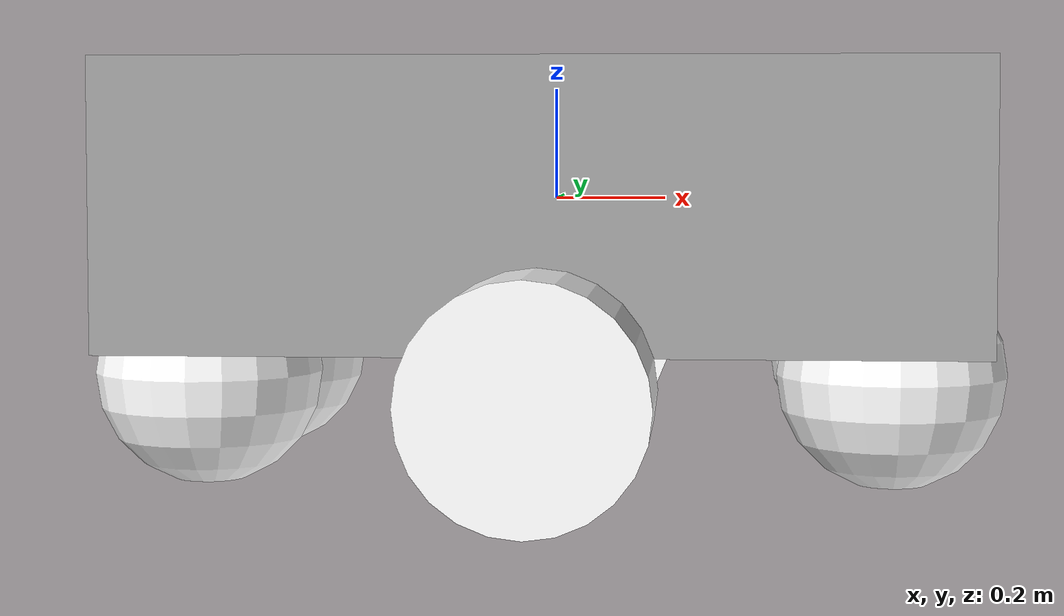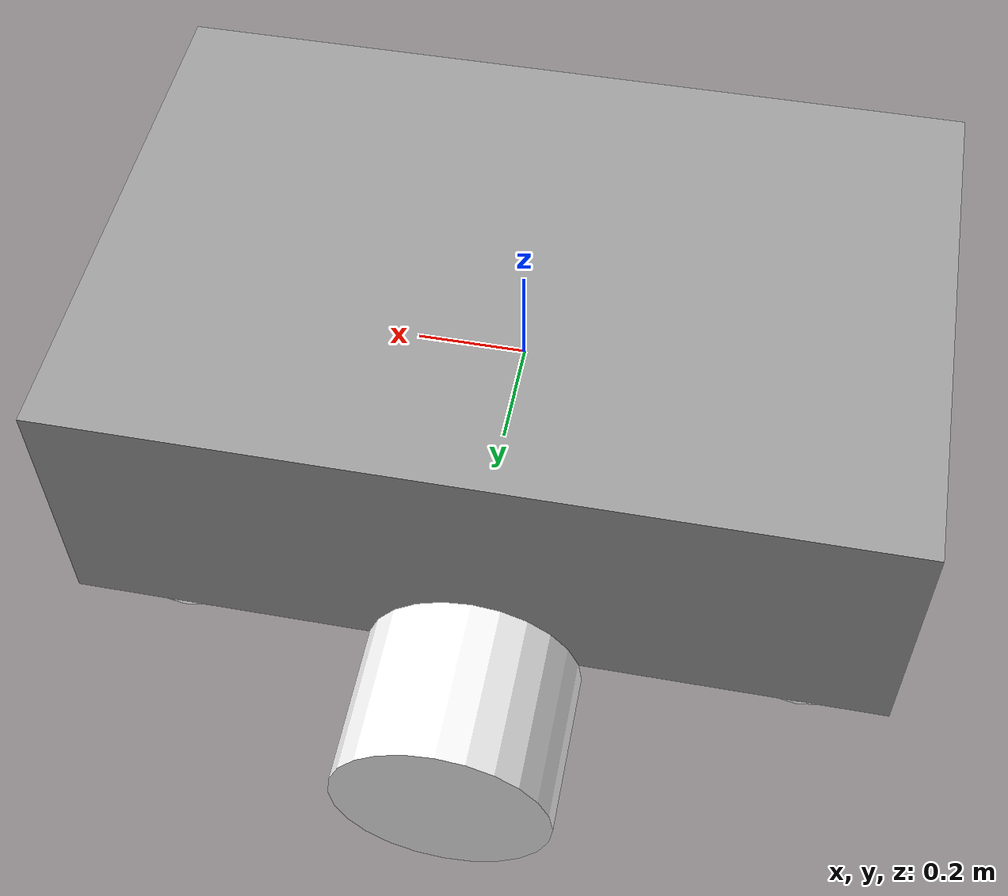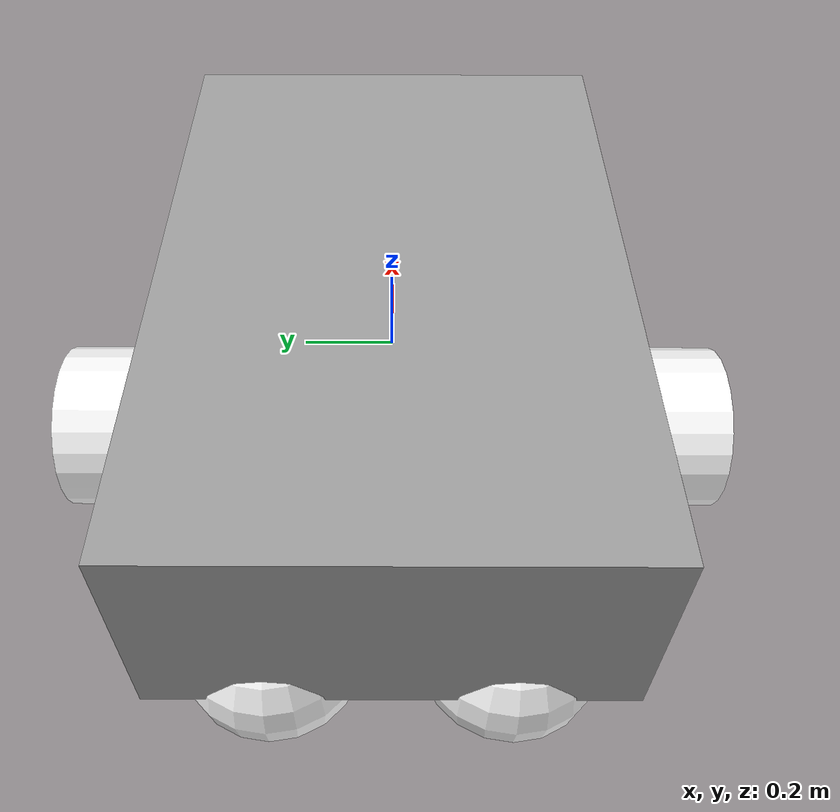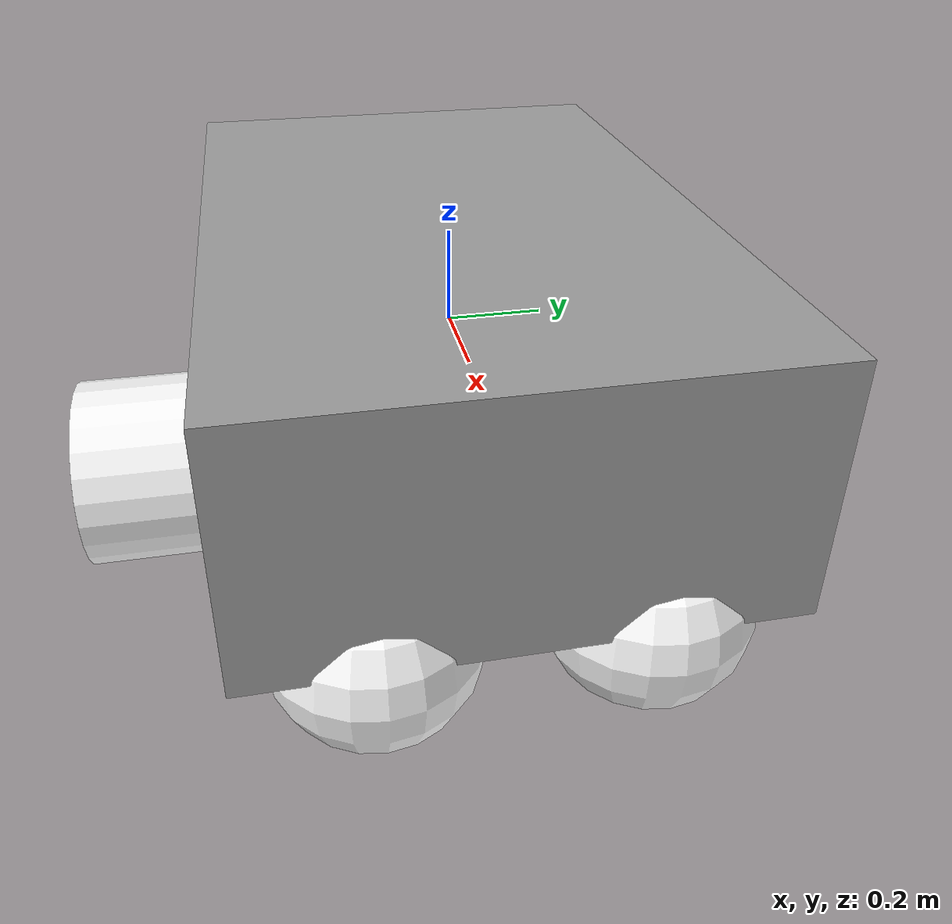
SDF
<sdf version='1.9'>
  <model name='dummy_bot'>
    <link name='chassis'>
      <inertial>
        <pose>0 0 0 0 0 0</pose>
        <mass>1</mass>
        <inertia>
          <ixx>0.1875</ixx>
          <ixy>0</ixy>
          <ixz>0</ixz>
          <iyy>0.089999999999999997</iyy>
          <iyz>0</iyz>
          <izz>0.27000000000000002</izz>
        </inertia>
      </inertial>
      <collision name='chassis_collision'>
        <pose>0 0 0 0 0 0</pose>
        <geometry>
          <box>
            <size>1.5 1 0.5</size>
          </box>
        </geometry>
      </collision>
      <visual name='chassis_visual'>
        <pose>0 0 0 0 0 0</pose>
        <geometry>
          <box>
            <size>1.5 1 0.5</size>
          </box>
        </geometry>
        <material>
          <diffuse>0.625 0.625 0.625 1</diffuse>
          <ambient>0.625 0.625 0.625 1</ambient>
        </material>
      </visual>
    </link>
    <joint name='chassis_to_back_left_dummy_wheel' type='revolute'>
      <pose relative_to='chassis'>0 0 0 0 0 0</pose>
      <parent>chassis</parent>
      <child>back_left_dummy_wheel</child>
      <axis>
        <xyz>1 0 0</xyz>
        <limit>
          <lower>-10000000000000000</lower>
          <upper>10000000000000000</upper>
        </limit>
        <dynamics>
          <spring_reference>0</spring_reference>
          <spring_stiffness>0</spring_stiffness>
        </dynamics>
      </axis>
    </joint>
    <link name='back_left_dummy_wheel'>
      <pose relative_to='chassis_to_back_left_dummy_wheel'>0 0 0 0 0 0</pose>
      <inertial>
        <pose>0 0 0 0 0 0</pose>
        <mass>1</mass>
        <inertia>
          <ixx>0.016</ixx>
          <ixy>0</ixy>
          <ixz>0</ixz>
          <iyy>0.016</iyy>
          <iyz>0</iyz>
          <izz>0.016</izz>
        </inertia>
      </inertial>
      <collision name='back_left_dummy_wheel_collision'>
        <pose>0 0 0 0 0 0</pose>
        <geometry>
          <sphere>
            <radius>0.20000000000000001</radius>
          </sphere>
        </geometry>
      </collision>
      <visual name='back_left_dummy_wheel_visual'>
        <pose>-0.6 0.25 -0.3 0 0 0</pose>
        <geometry>
          <sphere>
            <radius>0.20000000000000001</radius>
          </sphere>
        </geometry>
        <material>
          <diffuse>1 1 1 1</diffuse>
          <ambient>1 1 1 1</ambient>
        </material>
      </visual>
    </link>
    <joint name='chassis_to_back_right_dummy_wheel' type='revolute'>
      <pose relative_to='chassis'>0 0 0 0 0 0</pose>
      <parent>chassis</parent>
      <child>back_right_dummy_wheel</child>
      <axis>
        <xyz>1 0 0</xyz>
        <limit>
          <lower>-10000000000000000</lower>
          <upper>10000000000000000</upper>
        </limit>
        <dynamics>
          <spring_reference>0</spring_reference>
          <spring_stiffness>0</spring_stiffness>
        </dynamics>
      </axis>
    </joint>
    <link name='back_right_dummy_wheel'>
      <pose relative_to='chassis_to_back_right_dummy_wheel'>0 0 0 0 0 0</pose>
      <inertial>
        <pose>0 0 0 0 0 0</pose>
        <mass>1</mass>
        <inertia>
          <ixx>0.016</ixx>
          <ixy>0</ixy>
          <ixz>0</ixz>
          <iyy>0.016</iyy>
          <iyz>0</iyz>
          <izz>0.016</izz>
        </inertia>
      </inertial>
      <collision name='back_right_dummy_wheel_collision'>
        <pose>0 0 0 0 0 0</pose>
        <geometry>
          <sphere>
            <radius>0.20000000000000001</radius>
          </sphere>
        </geometry>
      </collision>
      <visual name='back_right_dummy_wheel_visual'>
        <pose>-0.6 -0.25 -0.3 0 0 0</pose>
        <geometry>
          <sphere>
            <radius>0.20000000000000001</radius>
          </sphere>
        </geometry>
        <material>
          <diffuse>1 1 1 1</diffuse>
          <ambient>1 1 1 1</ambient>
        </material>
      </visual>
    </link>
    <joint name='chassis_to_front_left_dummy_wheel' type='revolute'>
      <pose relative_to='chassis'>0 0 0 0 0 0</pose>
      <parent>chassis</parent>
      <child>front_left_dummy_wheel</child>
      <axis>
        <xyz>1 0 0</xyz>
        <limit>
          <lower>-10000000000000000</lower>
          <upper>10000000000000000</upper>
        </limit>
        <dynamics>
          <spring_reference>0</spring_reference>
          <spring_stiffness>0</spring_stiffness>
        </dynamics>
      </axis>
    </joint>
    <link name='front_left_dummy_wheel'>
      <pose relative_to='chassis_to_front_left_dummy_wheel'>0 0 0 0 0 0</pose>
      <inertial>
        <pose>0 0 0 0 0 0</pose>
        <mass>1</mass>
        <inertia>
          <ixx>0.016</ixx>
          <ixy>0</ixy>
          <ixz>0</ixz>
          <iyy>0.016</iyy>
          <iyz>0</iyz>
          <izz>0.016</izz>
        </inertia>
      </inertial>
      <collision name='front_left_dummy_wheel_collision'>
        <pose>0 0 0 0 0 0</pose>
        <geometry>
          <sphere>
            <radius>0.20000000000000001</radius>
          </sphere>
        </geometry>
      </collision>
      <visual name='front_left_dummy_wheel_visual'>
        <pose>0.6 0.25 -0.3 0 0 0</pose>
        <geometry>
          <sphere>
            <radius>0.20000000000000001</radius>
          </sphere>
        </geometry>
        <material>
          <diffuse>1 1 1 1</diffuse>
          <ambient>1 1 1 1</ambient>
        </material>
      </visual>
    </link>
    <joint name='chassis_to_front_right_dummy_wheel' type='revolute'>
      <pose relative_to='chassis'>0 0 0 0 0 0</pose>
      <parent>chassis</parent>
      <child>front_right_dummy_wheel</child>
      <axis>
        <xyz>1 0 0</xyz>
        <limit>
          <lower>-10000000000000000</lower>
          <upper>10000000000000000</upper>
        </limit>
        <dynamics>
          <spring_reference>0</spring_reference>
          <spring_stiffness>0</spring_stiffness>
        </dynamics>
      </axis>
    </joint>
    <link name='front_right_dummy_wheel'>
      <pose relative_to='chassis_to_front_right_dummy_wheel'>0 0 0 0 0 0</pose>
      <inertial>
        <pose>0 0 0 0 0 0</pose>
        <mass>1</mass>
        <inertia>
          <ixx>0.016</ixx>
          <ixy>0</ixy>
          <ixz>0</ixz>
          <iyy>0.016</iyy>
          <iyz>0</iyz>
          <izz>0.016</izz>
        </inertia>
      </inertial>
      <collision name='front_right_dummy_wheel_collision'>
        <pose>0 0 0 0 0 0</pose>
        <geometry>
          <sphere>
            <radius>0.20000000000000001</radius>
          </sphere>
        </geometry>
      </collision>
      <visual name='front_right_dummy_wheel_visual'>
        <pose>0.6 -0.25 -0.3 0 0 0</pose>
        <geometry>
          <sphere>
            <radius>0.20000000000000001</radius>
          </sphere>
        </geometry>
        <material>
          <diffuse>1 1 1 1</diffuse>
          <ambient>1 1 1 1</ambient>
        </material>
      </visual>
    </link>
    <joint name='chassis_to_left_wheel' type='revolute'>
      <pose relative_to='chassis'>0 0 0 0 0 0</pose>
      <parent>chassis</parent>
      <child>left_wheel</child>
      <axis>
        <xyz>0 1 0</xyz>
        <limit>
          <lower>-1.7976900000000001e+308</lower>
          <upper>1.7976900000000001e+308</upper>
          <effort>1000</effort>
          <velocity>0.5</velocity>
        </limit>
        <dynamics>
          <spring_reference>0</spring_reference>
          <spring_stiffness>0</spring_stiffness>
        </dynamics>
      </axis>
    </joint>
    <link name='left_wheel'>
      <pose relative_to='chassis_to_left_wheel'>0 0 0 0 0 0</pose>
      <inertial>
        <pose>0 0 0 0 0 0</pose>
        <mass>1</mass>
        <inertia>
          <ixx>0.017500000000000002</ixx>
          <ixy>0</ixy>
          <ixz>0</ixz>
          <iyy>0.017500000000000002</iyy>
          <iyz>0</iyz>
          <izz>0.02</izz>
        </inertia>
      </inertial>
      <collision name='left_wheel_collision'>
        <pose>0 0 0 0 0 0</pose>
        <geometry>
          <cylinder>
            <length>0.29999999999999999</length>
            <radius>0.20000000000000001</radius>
          </cylinder>
        </geometry>
      </collision>
      <visual name='left_wheel_visual'>
        <pose>0 0.65 -0.3 1.57075 0 0</pose>
        <geometry>
          <cylinder>
            <length>0.29999999999999999</length>
            <radius>0.20000000000000001</radius>
          </cylinder>
        </geometry>
        <material>
          <diffuse>1 1 1 1</diffuse>
          <ambient>1 1 1 1</ambient>
        </material>
      </visual>
    </link>
    <joint name='chassis_to_right_wheel' type='revolute'>
      <pose relative_to='chassis'>0 0 0 0 0 0</pose>
      <parent>chassis</parent>
      <child>right_wheel</child>
      <axis>
        <xyz>0 1 0</xyz>
        <limit>
          <lower>-1.7976900000000001e+308</lower>
          <upper>1.7976900000000001e+308</upper>
          <effort>1000</effort>
          <velocity>0.5</velocity>
        </limit>
        <dynamics>
          <spring_reference>0</spring_reference>
          <spring_stiffness>0</spring_stiffness>
        </dynamics>
      </axis>
    </joint>
    <link name='right_wheel'>
      <pose relative_to='chassis_to_right_wheel'>0 0 0 0 0 0</pose>
      <inertial>
        <pose>0 0 0 0 0 0</pose>
        <mass>1</mass>
        <inertia>
          <ixx>0.017500000000000002</ixx>
          <ixy>0</ixy>
          <ixz>0</ixz>
          <iyy>0.017500000000000002</iyy>
          <iyz>0</iyz>
          <izz>0.02</izz>
        </inertia>
      </inertial>
      <collision name='right_wheel_collision'>
        <pose>0 0 0 0 0 0</pose>
        <geometry>
          <cylinder>
            <length>0.29999999999999999</length>
            <radius>0.20000000000000001</radius>
          </cylinder>
        </geometry>
      </collision>
      <visual name='right_wheel_visual'>
        <pose>0 -0.65 -0.3 -1.57075 0 0</pose>
        <geometry>
          <cylinder>
            <length>0.29999999999999999</length>
            <radius>0.20000000000000001</radius>
          </cylinder>
        </geometry>
        <material>
          <diffuse>1 1 1 1</diffuse>
          <ambient>1 1 1 1</ambient>
        </material>
      </visual>
    </link>
    <self_collide>true</self_collide>
    <plugin name='ignition::gazebo::systems::DiffDrive' filename='libignition-gazebo-diff-drive-system.so'>
      <left_joint>left_wheel_joint</left_joint>
      <right_joint>right_wheel_joint</right_joint>
      <wheel_separation>0.8</wheel_separation>
      <wheel_radius>0.2</wheel_radius>
      <odom_publish_frequency>1</odom_publish_frequency>
      <topic>cmd_vel</topic>
    </plugin>
  </model>
</sdf>
